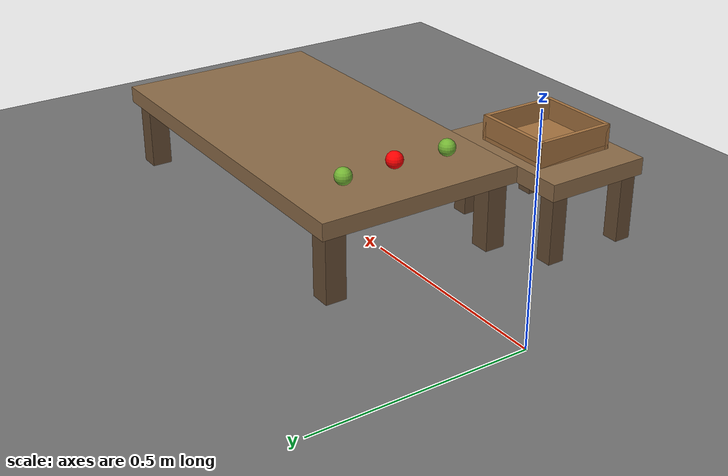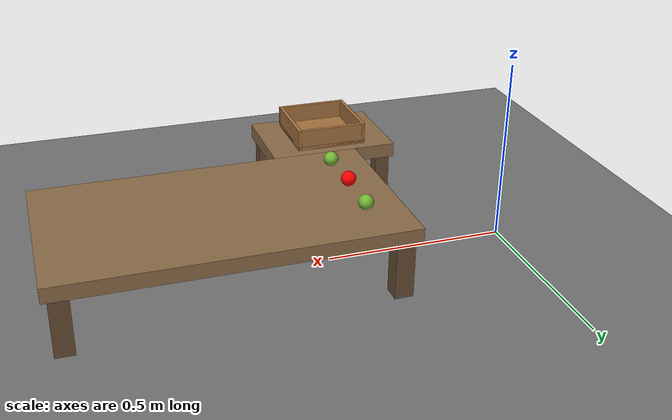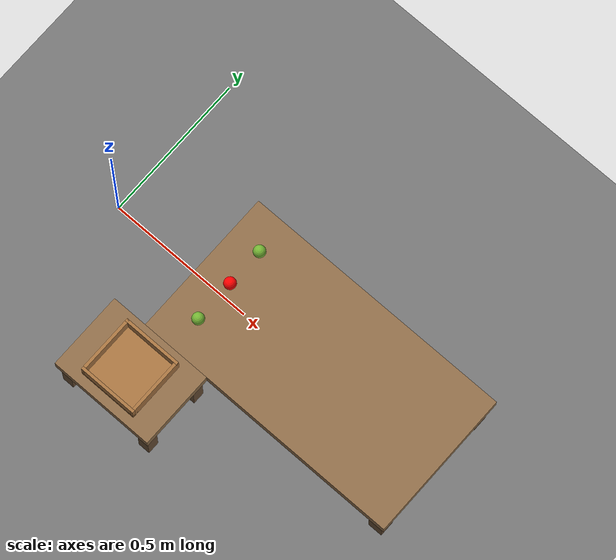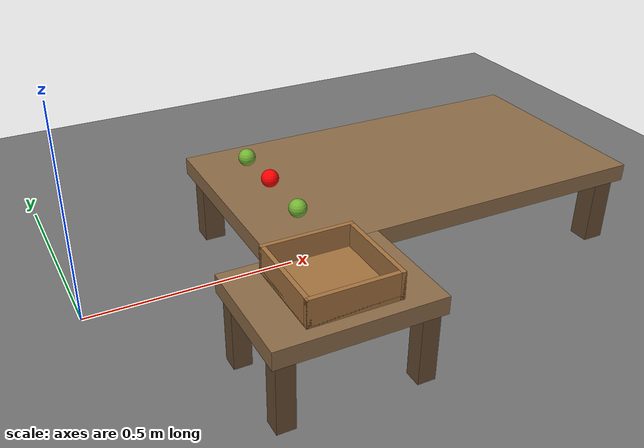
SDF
<?xml version="1.0"?>
<sdf version='1.7'>
  <!--
    Bench world. Table top height H = 0.20 m.
    The arm base must ALSO be at z = 0.20 (world->base fixed joint in
    d1_550_gazebo.urdf.xacro), otherwise it sits inside the table.
  -->
  <world name='default'>

    <light name='sun' type='directional'>
      <cast_shadows>1</cast_shadows>
      <pose>0 0 10 0 -0 0</pose>
      <diffuse>0.8 0.8 0.8 1</diffuse>
      <specular>0.2 0.2 0.2 1</specular>
      <direction>-0.5 0.1 -0.9</direction>
    </light>

    <model name='ground_plane'>
      <static>1</static>
      <link name='link'>
        <collision name='collision'>
          <geometry><plane><normal>0 0 1</normal><size>100 100</size></plane></geometry>
          <surface><friction><ode><mu>100</mu><mu2>50</mu2></ode></friction></surface>
        </collision>
        <visual name='visual'>
          <cast_shadows>0</cast_shadows>
          <geometry><plane><normal>0 0 1</normal><size>100 100</size></plane></geometry>
          <material><ambient>0.45 0.45 0.45 1</ambient><diffuse>0.45 0.45 0.45 1</diffuse></material>
        </visual>
      </link>
    </model>

    <gravity>0 0 -9.8</gravity>
    <physics type='ode'>
      <max_step_size>0.001</max_step_size>
      <real_time_factor>1</real_time_factor>
      <real_time_update_rate>1000</real_time_update_rate>
    </physics>
    <scene>
      <ambient>0.4 0.4 0.4 1</ambient>
      <background>0.55 0.75 0.95 1</background>
      <shadows>1</shadows>
    </scene>

    <!-- PICK TABLE: x -0.12..0.80, y -0.25..0.25. Arm base goes near its x=0 edge. -->
    <model name='pick_table'>
      <static>1</static>
      <pose>0.8 0.0 0 0 0 0</pose>
      <link name='link'>
        <collision name='top_c'>
          <pose>0 0 0.18 0 0 0</pose>
          <geometry><box><size>0.92 0.5 0.04</size></box></geometry>
          <surface><friction><ode><mu>1.0</mu><mu2>1.0</mu2></ode></friction></surface>
        </collision>
        <visual name='top_v'>
          <pose>0 0 0.18 0 0 0</pose>
          <geometry><box><size>0.92 0.5 0.04</size></box></geometry>
          <material><ambient>0.55 0.42 0.28 1</ambient><diffuse>0.55 0.42 0.28 1</diffuse></material>
        </visual>
        <collision name='leg1_c'><pose>0.42 0.21 0.09 0 0 0</pose><geometry><box><size>0.05 0.05 0.18</size></box></geometry></collision>
        <visual name='leg1_v'><pose>0.42 0.21 0.09 0 0 0</pose><geometry><box><size>0.05 0.05 0.18</size></box></geometry><material><ambient>0.4 0.3 0.2 1</ambient><diffuse>0.4 0.3 0.2 1</diffuse></material></visual>
        <collision name='leg2_c'><pose>-0.42 0.21 0.09 0 0 0</pose><geometry><box><size>0.05 0.05 0.18</size></box></geometry></collision>
        <visual name='leg2_v'><pose>-0.42 0.21 0.09 0 0 0</pose><geometry><box><size>0.05 0.05 0.18</size></box></geometry><material><ambient>0.4 0.3 0.2 1</ambient><diffuse>0.4 0.3 0.2 1</diffuse></material></visual>
        <collision name='leg3_c'><pose>0.42 -0.21 0.09 0 0 0</pose><geometry><box><size>0.05 0.05 0.18</size></box></geometry></collision>
        <visual name='leg3_v'><pose>0.42 -0.21 0.09 0 0 0</pose><geometry><box><size>0.05 0.05 0.18</size></box></geometry><material><ambient>0.4 0.3 0.2 1</ambient><diffuse>0.4 0.3 0.2 1</diffuse></material></visual>
        <collision name='leg4_c'><pose>-0.42 -0.21 0.09 0 0 0</pose><geometry><box><size>0.05 0.05 0.18</size></box></geometry></collision>
        <visual name='leg4_v'><pose>-0.42 -0.21 0.09 0 0 0</pose><geometry><box><size>0.05 0.05 0.18</size></box></geometry><material><ambient>0.4 0.3 0.2 1</ambient><diffuse>0.4 0.3 0.2 1</diffuse></material></visual>
      </link>
    </model>

    <!-- PLACE TABLE: x 0.02..0.38, y -0.51..-0.25 (touches the pick table edge) -->
    <model name='place_table'>
      <static>1</static>
      <pose>0.40 -0.38 0 0 0 0</pose>
      <link name='link'>
        <collision name='top_c'>
          <pose>0 0 0.18 0 0 0</pose>
          <geometry><box><size>0.36 0.26 0.04</size></box></geometry>
        </collision>
        <visual name='top_v'>
          <pose>0 0 0.18 0 0 0</pose>
          <geometry><box><size>0.36 0.26 0.04</size></box></geometry>
          <material><ambient>0.55 0.42 0.28 1</ambient><diffuse>0.55 0.42 0.28 1</diffuse></material>
        </visual>
        <collision name='leg1_c'><pose>0.15 0.10 0.09 0 0 0</pose><geometry><box><size>0.04 0.04 0.18</size></box></geometry></collision>
        <visual name='leg1_v'><pose>0.15 0.10 0.09 0 0 0</pose><geometry><box><size>0.04 0.04 0.18</size></box></geometry><material><ambient>0.4 0.3 0.2 1</ambient><diffuse>0.4 0.3 0.2 1</diffuse></material></visual>
        <collision name='leg2_c'><pose>-0.15 0.10 0.09 0 0 0</pose><geometry><box><size>0.04 0.04 0.18</size></box></geometry></collision>
        <visual name='leg2_v'><pose>-0.15 0.10 0.09 0 0 0</pose><geometry><box><size>0.04 0.04 0.18</size></box></geometry><material><ambient>0.4 0.3 0.2 1</ambient><diffuse>0.4 0.3 0.2 1</diffuse></material></visual>
        <collision name='leg3_c'><pose>0.15 -0.10 0.09 0 0 0</pose><geometry><box><size>0.04 0.04 0.18</size></box></geometry></collision>
        <visual name='leg3_v'><pose>0.15 -0.10 0.09 0 0 0</pose><geometry><box><size>0.04 0.04 0.18</size></box></geometry><material><ambient>0.4 0.3 0.2 1</ambient><diffuse>0.4 0.3 0.2 1</diffuse></material></visual>
        <collision name='leg4_c'><pose>-0.15 -0.10 0.09 0 0 0</pose><geometry><box><size>0.04 0.04 0.18</size></box></geometry></collision>
        <visual name='leg4_v'><pose>-0.15 -0.10 0.09 0 0 0</pose><geometry><box><size>0.04 0.04 0.18</size></box></geometry><material><ambient>0.4 0.3 0.2 1</ambient><diffuse>0.4 0.3 0.2 1</diffuse></material></visual>
      </link>
    </model>

    <!-- Harvest crate on the place table -->
    <model name='harvest_crate'>
      <static>1</static>
      <pose>0.40 -0.38 0.20 0 0 0</pose>
      <link name='link'>
        <collision name='floor_c'><pose>0 0 0.005 0 0 0</pose><geometry><box><size>0.20 0.20 0.01</size></box></geometry></collision>
        <visual name='floor_v'><pose>0 0 0.005 0 0 0</pose><geometry><box><size>0.20 0.20 0.01</size></box></geometry><material><ambient>0.65 0.45 0.25 1</ambient><diffuse>0.65 0.45 0.25 1</diffuse></material></visual>
        <collision name='wall_n_c'><pose>0.095 0 0.03 0 0 0</pose><geometry><box><size>0.01 0.20 0.06</size></box></geometry></collision>
        <visual name='wall_n_v'><pose>0.095 0 0.03 0 0 0</pose><geometry><box><size>0.01 0.20 0.06</size></box></geometry><material><ambient>0.65 0.45 0.25 1</ambient><diffuse>0.65 0.45 0.25 1</diffuse></material></visual>
        <collision name='wall_s_c'><pose>-0.095 0 0.03 0 0 0</pose><geometry><box><size>0.01 0.20 0.06</size></box></geometry></collision>
        <visual name='wall_s_v'><pose>-0.095 0 0.03 0 0 0</pose><geometry><box><size>0.01 0.20 0.06</size></box></geometry><material><ambient>0.65 0.45 0.25 1</ambient><diffuse>0.65 0.45 0.25 1</diffuse></material></visual>
        <collision name='wall_e_c'><pose>0 0.095 0.03 0 0 0</pose><geometry><box><size>0.20 0.01 0.06</size></box></geometry></collision>
        <visual name='wall_e_v'><pose>0 0.095 0.03 0 0 0</pose><geometry><box><size>0.20 0.01 0.06</size></box></geometry><material><ambient>0.65 0.45 0.25 1</ambient><diffuse>0.65 0.45 0.25 1</diffuse></material></visual>
        <collision name='wall_w_c'><pose>0 -0.095 0.03 0 0 0</pose><geometry><box><size>0.20 0.01 0.06</size></box></geometry></collision>
        <visual name='wall_w_v'><pose>0 -0.095 0.03 0 0 0</pose><geometry><box><size>0.20 0.01 0.06</size></box></geometry><material><ambient>0.65 0.45 0.25 1</ambient><diffuse>0.65 0.45 0.25 1</diffuse></material></visual>
      </link>
    </model>

    <!-- TARGET: ripe tomato (only red object). Resting on the pick table top (z=0.20). -->
    <model name='tomato_ripe'>
      <pose>0.45 0 0.236 0 0 0</pose>
      <link name='link'>
        <velocity_decay><linear>0.1</linear><angular>1.0</angular></velocity_decay>
        <inertial>
          <mass>0.1</mass>
          <inertia>
            <ixx>4.9e-5</ixx><iyy>4.9e-5</iyy><izz>4.9e-5</izz>
            <ixy>0</ixy><ixz>0</ixz><iyz>0</iyz>
          </inertia>
        </inertial>
        <collision name='collision'>
c          <surface><friction><ode><mu>1.5</mu><mu2>1.5</mu2></ode></friction></surface>
        </collision>
        <visual name='visual'>
          <geometry><sphere><radius>0.02</radius></sphere></geometry>
          <material><ambient>1 0 0 1</ambient><diffuse>1 0 0 1</diffuse></material>
        </visual>
      </link>
    </model>

    <!-- DISTRACTORS: unripe green tomatoes -->
    <model name='tomato_unripe_1'>
      <pose>0.45 0.13 0.231 0 0 0</pose>
      <link name='link'>
        <velocity_decay><linear>0.1</linear><angular>1.0</angular></velocity_decay>
        <inertial>
          <mass>0.08</mass>
          <inertia>
            <ixx>2.5e-5</ixx><iyy>2.5e-5</iyy><izz>2.5e-5</izz>
            <ixy>0</ixy><ixz>0</ixz><iyz>0</iyz>
          </inertia>
        </inertial>
        <collision name='collision'><geometry><sphere><radius>0.03</radius></sphere></geometry></collision>
        <visual name='visual'>
          <geometry><sphere><radius>0.02</radius></sphere></geometry>
          <material><ambient>0.45 0.7 0.2 1</ambient><diffuse>0.45 0.7 0.2 1</diffuse></material>
        </visual>
      </link>
    </model>

    <model name='tomato_unripe_2'>
      <pose>0.45 -0.14 0.231 0 0 0</pose>
      <link name='link'>
        <velocity_decay><linear>0.1</linear><angular>1.0</angular></velocity_decay>
        <inertial>
          <mass>0.08</mass>
          <inertia>
            <ixx>2.5e-5</ixx><iyy>2.5e-5</iyy><izz>2.5e-5</izz>
            <ixy>0</ixy><ixz>0</ixz><iyz>0</iyz>
          </inertia>
        </inertial>
        <collision name='collision'><geometry><sphere><radius>0.03</radius></sphere></geometry></collision>
        <visual name='visual'>
          <geometry><sphere><radius>0.02</radius></sphere></geometry>
          <material><ambient>0.45 0.7 0.2 1</ambient><diffuse>0.45 0.7 0.2 1</diffuse></material>
        </visual>
      </link>
    </model>

    <gui fullscreen='0'>
      <camera name='user_camera'>
        <pose>0.9 -0.8 0.7 0 0.5 2.4</pose>
        <view_controller>orbit</view_controller>
        <projection_type>perspective</projection_type>
      </camera>
    </gui>

    <plugin name="gazebo_link_attacher" filename="libgazebo_link_attacher.so"/>

  </world>
</sdf>
